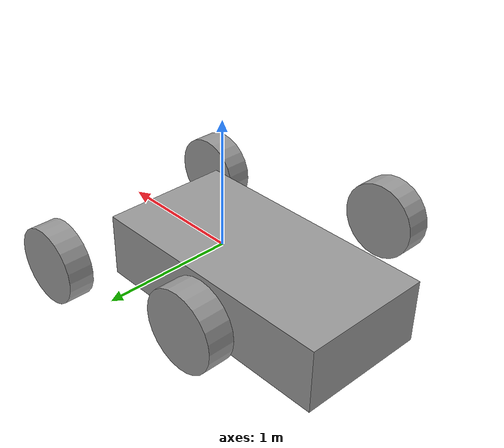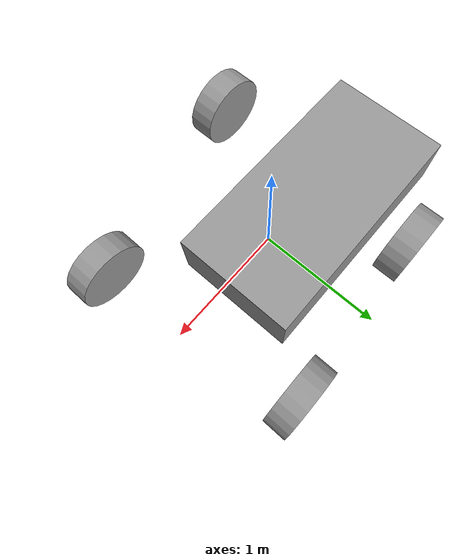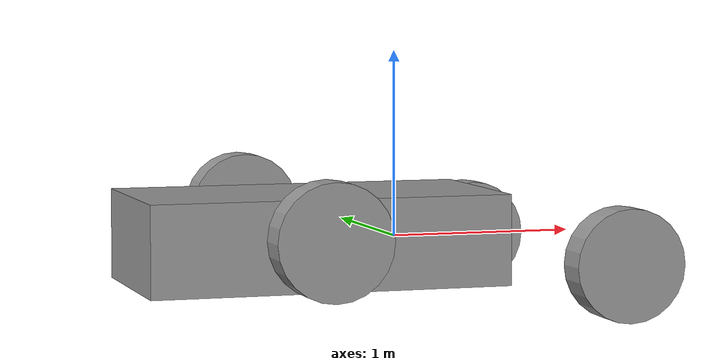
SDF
<?xml version='1.0'?>
<sdf version='1.6'>
  <model name='final'>
    <link name='link_1'>
      <inertial>
        <mass>1</mass>
        <inertia>
          <ixx>0.145833</ixx>
          <ixy>0</ixy>
          <ixz>0</ixz>
          <iyy>0.145833</iyy>
          <iyz>0</iyz>
          <izz>0.125</izz>
        </inertia>
        <pose>0 0 0 0 -0 0</pose>
      </inertial>
      <pose>0.995529 -0.827646 -0.1 1.5705 -0 0</pose>
      <gravity>1</gravity>
      <self_collide>0</self_collide>
      <kinematic>0</kinematic>
      <enable_wind>0</enable_wind>
      <visual name='visual'>
        <pose>0 0 0 0 -0 0</pose>
        <geometry>
          <cylinder>
            <radius>0.3</radius>
            <length>0.2</length>
          </cylinder>
        </geometry>
        <material>
          <lighting>1</lighting>
          <script>
            <uri>file://media/materials/scripts/gazebo.material</uri>
            <name>Gazebo/Grey</name>
          </script>
          <shader type='pixel'>
            <normal_map>__default__</normal_map>
          </shader>
          <ambient>0.3 0.3 0.3 1</ambient>
          <diffuse>0.7 0.7 0.7 1</diffuse>
          <specular>0.01 0.01 0.01 1</specular>
          <emissive>0 0 0 1</emissive>
        </material>
        <transparency>0</transparency>
        <cast_shadows>1</cast_shadows>
      </visual>
      <collision name='collision'>
        <laser_retro>0</laser_retro>
        <max_contacts>10</max_contacts>
        <pose>0 0 0 0 -0 0</pose>
        <geometry>
          <cylinder>
            <radius>0.3</radius>
            <length>0.25</length>
          </cylinder>
        </geometry>
        <surface>
          <friction>
            <ode>
              <mu>1</mu>
              <mu2>1</mu2>
              <fdir1>0 0 0</fdir1>
              <slip1>0</slip1>
              <slip2>0</slip2>
            </ode>
            <torsional>
              <coefficient>1</coefficient>
              <patch_radius>0</patch_radius>
              <surface_radius>0</surface_radius>
              <use_patch_radius>1</use_patch_radius>
              <ode>
                <slip>0</slip>
              </ode>
            </torsional>
          </friction>
          <bounce>
            <restitution_coefficient>0</restitution_coefficient>
            <threshold>1e+06</threshold>
          </bounce>
          <contact>
            <collide_without_contact>0</collide_without_contact>
            <collide_without_contact_bitmask>1</collide_without_contact_bitmask>
            <collide_bitmask>1</collide_bitmask>
            <ode>
              <soft_cfm>0</soft_cfm>
              <soft_erp>0.2</soft_erp>
              <kp>1e+13</kp>
              <kd>1</kd>
              <max_vel>0.01</max_vel>
              <min_depth>0</min_depth>
            </ode>
            <bullet>
              <split_impulse>1</split_impulse>
              <split_impulse_penetration_threshold>-0.01</split_impulse_penetration_threshold>
              <soft_cfm>0</soft_cfm>
              <soft_erp>0.2</soft_erp>
              <kp>1e+13</kp>
              <kd>1</kd>
            </bullet>
          </contact>
        </surface>
      </collision>
    </link>
    <link name='link_1_clone'>
      <inertial>
        <mass>1</mass>
        <inertia>
          <ixx>0.145833</ixx>
          <ixy>0</ixy>
          <ixz>0</ixz>
          <iyy>0.145833</iyy>
          <iyz>0</iyz>
          <izz>0.125</izz>
        </inertia>
        <pose>0 0 0 0 -0 0</pose>
      </inertial>
      <pose>0.754305 0.937535 -0.1 1.5705 -0 0</pose>
      <gravity>1</gravity>
      <self_collide>0</self_collide>
      <kinematic>0</kinematic>
      <enable_wind>0</enable_wind>
      <visual name='visual'>
        <pose>0 0 0 0 -0 0</pose>
        <geometry>
          <cylinder>
            <radius>0.3</radius>
            <length>0.2</length>
          </cylinder>
        </geometry>
        <material>
          <lighting>1</lighting>
          <script>
            <uri>file://media/materials/scripts/gazebo.material</uri>
            <name>Gazebo/Grey</name>
          </script>
          <shader type='pixel'>
            <normal_map>__default__</normal_map>
          </shader>
          <ambient>0.3 0.3 0.3 1</ambient>
          <diffuse>0.7 0.7 0.7 1</diffuse>
          <specular>0.01 0.01 0.01 1</specular>
          <emissive>0 0 0 1</emissive>
        </material>
        <transparency>0</transparency>
        <cast_shadows>1</cast_shadows>
      </visual>
      <collision name='collision'>
        <laser_retro>0</laser_retro>
        <max_contacts>10</max_contacts>
        <pose>0 0 0 0 -0 0</pose>
        <geometry>
          <cylinder>
            <radius>0.3</radius>
            <length>0.25</length>
          </cylinder>
        </geometry>
        <surface>
          <friction>
            <ode>
              <mu>1</mu>
              <mu2>1</mu2>
              <fdir1>0 0 0</fdir1>
              <slip1>0</slip1>
              <slip2>0</slip2>
            </ode>
            <torsional>
              <coefficient>1</coefficient>
              <patch_radius>0</patch_radius>
              <surface_radius>0</surface_radius>
              <use_patch_radius>1</use_patch_radius>
              <ode>
                <slip>0</slip>
              </ode>
            </torsional>
          </friction>
          <bounce>
            <restitution_coefficient>0</restitution_coefficient>
            <threshold>1e+06</threshold>
          </bounce>
          <contact>
            <collide_without_contact>0</collide_without_contact>
            <collide_without_contact_bitmask>1</collide_without_contact_bitmask>
            <collide_bitmask>1</collide_bitmask>
            <ode>
              <soft_cfm>0</soft_cfm>
              <soft_erp>0.2</soft_erp>
              <kp>1e+13</kp>
              <kd>1</kd>
              <max_vel>0.01</max_vel>
              <min_depth>0</min_depth>
            </ode>
            <bullet>
              <split_impulse>1</split_impulse>
              <split_impulse_penetration_threshold>-0.01</split_impulse_penetration_threshold>
              <soft_cfm>0</soft_cfm>
              <soft_erp>0.2</soft_erp>
              <kp>1e+13</kp>
              <kd>1</kd>
            </bullet>
          </contact>
        </surface>
      </collision>
    </link>
    <link name='link_1_clone_0'>
      <inertial>
        <mass>1</mass>
        <inertia>
          <ixx>0.145833</ixx>
          <ixy>0</ixy>
          <ixz>0</ixz>
          <iyy>0.145833</iyy>
          <iyz>0</iyz>
          <izz>0.125</izz>
        </inertia>
        <pose>0 0 0 0 -0 0</pose>
      </inertial>
      <pose>-0.662681 -1.04989 0.1 1.5705 -0 0</pose>
      <gravity>1</gravity>
      <self_collide>0</self_collide>
      <kinematic>0</kinematic>
      <enable_wind>0</enable_wind>
      <visual name='visual'>
        <pose>0 0 0 0 -0 0</pose>
        <geometry>
          <cylinder>
            <radius>0.3</radius>
            <length>0.2</length>
          </cylinder>
        </geometry>
        <material>
          <lighting>1</lighting>
          <script>
            <uri>file://media/materials/scripts/gazebo.material</uri>
            <name>Gazebo/Grey</name>
          </script>
          <shader type='pixel'>
            <normal_map>__default__</normal_map>
          </shader>
          <ambient>0.3 0.3 0.3 1</ambient>
          <diffuse>0.7 0.7 0.7 1</diffuse>
          <specular>0.01 0.01 0.01 1</specular>
          <emissive>0 0 0 1</emissive>
        </material>
        <transparency>0</transparency>
        <cast_shadows>1</cast_shadows>
      </visual>
      <collision name='collision'>
        <laser_retro>0</laser_retro>
        <max_contacts>10</max_contacts>
        <pose>0 0 0 0 -0 0</pose>
        <geometry>
          <cylinder>
            <radius>0.3</radius>
            <length>0.25</length>
          </cylinder>
        </geometry>
        <surface>
          <friction>
            <ode>
              <mu>1</mu>
              <mu2>1</mu2>
              <fdir1>0 0 0</fdir1>
              <slip1>0</slip1>
              <slip2>0</slip2>
            </ode>
            <torsional>
              <coefficient>1</coefficient>
              <patch_radius>0</patch_radius>
              <surface_radius>0</surface_radius>
              <use_patch_radius>1</use_patch_radius>
              <ode>
                <slip>0</slip>
              </ode>
            </torsional>
          </friction>
          <bounce>
            <restitution_coefficient>0</restitution_coefficient>
            <threshold>1e+06</threshold>
          </bounce>
          <contact>
            <collide_without_contact>0</collide_without_contact>
            <collide_without_contact_bitmask>1</collide_without_contact_bitmask>
            <collide_bitmask>1</collide_bitmask>
            <ode>
              <soft_cfm>0</soft_cfm>
              <soft_erp>0.2</soft_erp>
              <kp>1e+13</kp>
              <kd>1</kd>
              <max_vel>0.01</max_vel>
              <min_depth>0</min_depth>
            </ode>
            <bullet>
              <split_impulse>1</split_impulse>
              <split_impulse_penetration_threshold>-0.01</split_impulse_penetration_threshold>
              <soft_cfm>0</soft_cfm>
              <soft_erp>0.2</soft_erp>
              <kp>1e+13</kp>
              <kd>1</kd>
            </bullet>
          </contact>
        </surface>
      </collision>
    </link>
    <link name='link_1_clone_1'>
      <inertial>
        <mass>1</mass>
        <inertia>
          <ixx>0.145833</ixx>
          <ixy>0</ixy>
          <ixz>0</ixz>
          <iyy>0.145833</iyy>
          <iyz>0</iyz>
          <izz>0.125</izz>
        </inertia>
        <pose>0 0 0 0 -0 0</pose>
      </inertial>
      <pose>-0.633371 0.852706 0.1 1.5705 -0 0</pose>
      <gravity>1</gravity>
      <self_collide>0</self_collide>
      <kinematic>0</kinematic>
      <enable_wind>0</enable_wind>
      <visual name='visual'>
        <pose>0 0 0 0 -0 0</pose>
        <geometry>
          <cylinder>
            <radius>0.3</radius>
            <length>0.2</length>
          </cylinder>
        </geometry>
        <material>
          <lighting>1</lighting>
          <script>
            <uri>file://media/materials/scripts/gazebo.material</uri>
            <name>Gazebo/Grey</name>
          </script>
          <shader type='pixel'>
            <normal_map>__default__</normal_map>
          </shader>
          <ambient>0.3 0.3 0.3 1</ambient>
          <diffuse>0.7 0.7 0.7 1</diffuse>
          <specular>0.01 0.01 0.01 1</specular>
          <emissive>0 0 0 1</emissive>
        </material>
        <transparency>0</transparency>
        <cast_shadows>1</cast_shadows>
      </visual>
      <collision name='collision'>
        <laser_retro>0</laser_retro>
        <max_contacts>10</max_contacts>
        <pose>0 0 0 0 -0 0</pose>
        <geometry>
          <cylinder>
            <radius>0.3</radius>
            <length>0.25</length>
          </cylinder>
        </geometry>
        <surface>
          <friction>
            <ode>
              <mu>1</mu>
              <mu2>1</mu2>
              <fdir1>0 0 0</fdir1>
              <slip1>0</slip1>
              <slip2>0</slip2>
            </ode>
            <torsional>
              <coefficient>1</coefficient>
              <patch_radius>0</patch_radius>
              <surface_radius>0</surface_radius>
              <use_patch_radius>1</use_patch_radius>
              <ode>
                <slip>0</slip>
              </ode>
            </torsional>
          </friction>
          <bounce>
            <restitution_coefficient>0</restitution_coefficient>
            <threshold>1e+06</threshold>
          </bounce>
          <contact>
            <collide_without_contact>0</collide_without_contact>
            <collide_without_contact_bitmask>1</collide_without_contact_bitmask>
            <collide_bitmask>1</collide_bitmask>
            <ode>
              <soft_cfm>0</soft_cfm>
              <soft_erp>0.2</soft_erp>
              <kp>1e+13</kp>
              <kd>1</kd>
              <max_vel>0.01</max_vel>
              <min_depth>0</min_depth>
            </ode>
            <bullet>
              <split_impulse>1</split_impulse>
              <split_impulse_penetration_threshold>-0.01</split_impulse_penetration_threshold>
              <soft_cfm>0</soft_cfm>
              <soft_erp>0.2</soft_erp>
              <kp>1e+13</kp>
              <kd>1</kd>
            </bullet>
          </contact>
        </surface>
      </collision>
    </link>
    <link name='link_2'>
      <inertial>
        <mass>0.954167</mass>
        <inertia>
          <ixx>0.0984764</ixx>
          <ixy>0</ixy>
          <ixz>0</ixz>
          <iyy>0.322504</iyy>
          <iyz>0</iyz>
          <izz>0.383055</izz>
        </inertia>
        <pose>0 0 0 0 -0 0</pose>
      </inertial>
      <pose>-0.45378 0.087303 0 0 -0 0</pose>
      <gravity>1</gravity>
      <self_collide>0</self_collide>
      <kinematic>0</kinematic>
      <enable_wind>0</enable_wind>
      <visual name='visual'>
        <pose>0 0 0 0 -0 0</pose>
        <geometry>
          <box>
            <size>1.95383 1 0.488344</size>
          </box>
        </geometry>
        <material>
          <lighting>1</lighting>
          <script>
            <uri>file://media/materials/scripts/gazebo.material</uri>
            <name>Gazebo/Grey</name>
          </script>
          <shader type='pixel'>
            <normal_map>__default__</normal_map>
          </shader>
          <ambient>0.3 0.3 0.3 1</ambient>
          <diffuse>0.7 0.7 0.7 1</diffuse>
          <specular>0.01 0.01 0.01 1</specular>
          <emissive>0 0 0 1</emissive>
        </material>
        <transparency>0</transparency>
        <cast_shadows>1</cast_shadows>
      </visual>
      <collision name='collision'>
        <laser_retro>0</laser_retro>
        <max_contacts>10</max_contacts>
        <pose>0 0 0 0 -0 0</pose>
        <geometry>
          <box>
            <size>1.95383 1 0.488344</size>
          </box>
        </geometry>
        <surface>
          <friction>
            <ode>
              <mu>1</mu>
              <mu2>1</mu2>
              <fdir1>0 0 0</fdir1>
              <slip1>0</slip1>
              <slip2>0</slip2>
            </ode>
            <torsional>
              <coefficient>1</coefficient>
              <patch_radius>0</patch_radius>
              <surface_radius>0</surface_radius>
              <use_patch_radius>1</use_patch_radius>
              <ode>
                <slip>0</slip>
              </ode>
            </torsional>
          </friction>
          <bounce>
            <restitution_coefficient>0</restitution_coefficient>
            <threshold>1e+06</threshold>
          </bounce>
          <contact>
            <collide_without_contact>0</collide_without_contact>
            <collide_without_contact_bitmask>1</collide_without_contact_bitmask>
            <collide_bitmask>1</collide_bitmask>
            <ode>
              <soft_cfm>0</soft_cfm>
              <soft_erp>0.2</soft_erp>
              <kp>1e+13</kp>
              <kd>1</kd>
              <max_vel>0.01</max_vel>
              <min_depth>0</min_depth>
            </ode>
            <bullet>
              <split_impulse>1</split_impulse>
              <split_impulse_penetration_threshold>-0.01</split_impulse_penetration_threshold>
              <soft_cfm>0</soft_cfm>
              <soft_erp>0.2</soft_erp>
              <kp>1e+13</kp>
              <kd>1</kd>
            </bullet>
          </contact>
        </surface>
      </collision>
    </link>
    <joint name='link_2_JOINT_10' type='revolute'>
      <parent>link_2</parent>
      <child>link_1_clone_0</child>
      <pose>0 0 0 0 -0 0</pose>
      <axis>
        <xyz>0 0 1</xyz>
        <limit>
          <lower>-1.79769e+308</lower>
          <upper>1.79769e+308</upper>
          <effort>-1</effort>
          <velocity>-1</velocity>
        </limit>
        <dynamics>
          <spring_reference>0</spring_reference>
          <spring_stiffness>0</spring_stiffness>
          <damping>0</damping>
        </dynamics>
      </axis>
      <physics>
        <ode>
          <limit>
            <cfm>0</cfm>
            <erp>0.2</erp>
          </limit>
          <suspension>
            <cfm>0</cfm>
            <erp>0.2</erp>
          </suspension>
        </ode>
      </physics>
    </joint>
    <joint name='link_2_JOINT_1' type='revolute'>
      <parent>link_2</parent>
      <child>link_1</child>
      <pose>0 0 0 0 -0 0</pose>
      <axis>
        <xyz>0 0 1</xyz>
        <limit>
          <lower>-1.79769e+308</lower>
          <upper>1.79769e+308</upper>
          <effort>-1</effort>
          <velocity>-1</velocity>
        </limit>
        <dynamics>
          <spring_reference>0</spring_reference>
          <spring_stiffness>0</spring_stiffness>
          <damping>0</damping>
          <friction>0</friction>
        </dynamics>
      </axis>
      <physics>
        <ode>
          <limit>
            <cfm>0</cfm>
            <erp>0.2</erp>
          </limit>
          <suspension>
            <cfm>0</cfm>
            <erp>0.2</erp>
          </suspension>
        </ode>
      </physics>
    </joint>
    <joint name='link_2_JOINT_8' type='revolute'>
      <parent>link_2</parent>
      <child>link_1_clone</child>
      <pose>0 0 0 0 -0 0</pose>
      <axis>
        <xyz>0 0 1</xyz>
        <limit>
          <lower>-1.79769e+308</lower>
          <upper>1.79769e+308</upper>
          <effort>-1</effort>
          <velocity>-1</velocity>
        </limit>
        <dynamics>
          <spring_reference>0</spring_reference>
          <spring_stiffness>0</spring_stiffness>
          <damping>0</damping>
        </dynamics>
      </axis>
      <physics>
        <ode>
          <limit>
            <cfm>0</cfm>
            <erp>0.2</erp>
          </limit>
          <suspension>
            <cfm>0</cfm>
            <erp>0.2</erp>
          </suspension>
        </ode>
      </physics>
    </joint>
    <joint name='link_2_JOINT_9' type='revolute'>
      <parent>link_2</parent>
      <child>link_1_clone_1</child>
      <pose>0 0 0 0 -0 0</pose>
      <axis>
        <xyz>0 0 1</xyz>
        <limit>
          <lower>-1.79769e+308</lower>
          <upper>1.79769e+308</upper>
          <effort>-1</effort>
          <velocity>-1</velocity>
        </limit>
        <dynamics>
          <spring_reference>0</spring_reference>
          <spring_stiffness>0</spring_stiffness>
          <damping>0</damping>
        </dynamics>
      </axis>
      <physics>
        <ode>
          <limit>
            <cfm>0</cfm>
            <erp>0.2</erp>
          </limit>
          <suspension>
            <cfm>0</cfm>
            <erp>0.2</erp>
          </suspension>
        </ode>
      </physics>
    </joint>
    <static>0</static>
    <allow_auto_disable>1</allow_auto_disable>
  </model>
</sdf>
